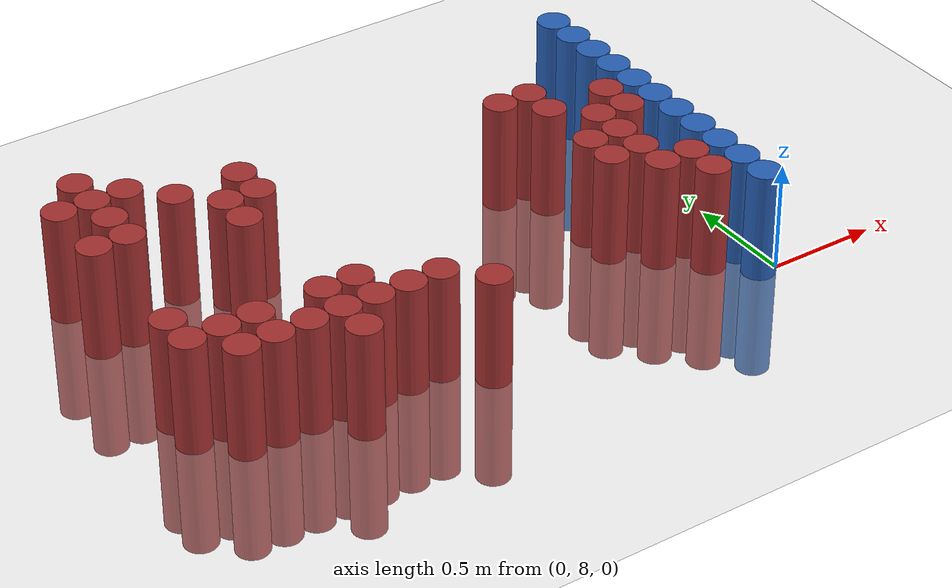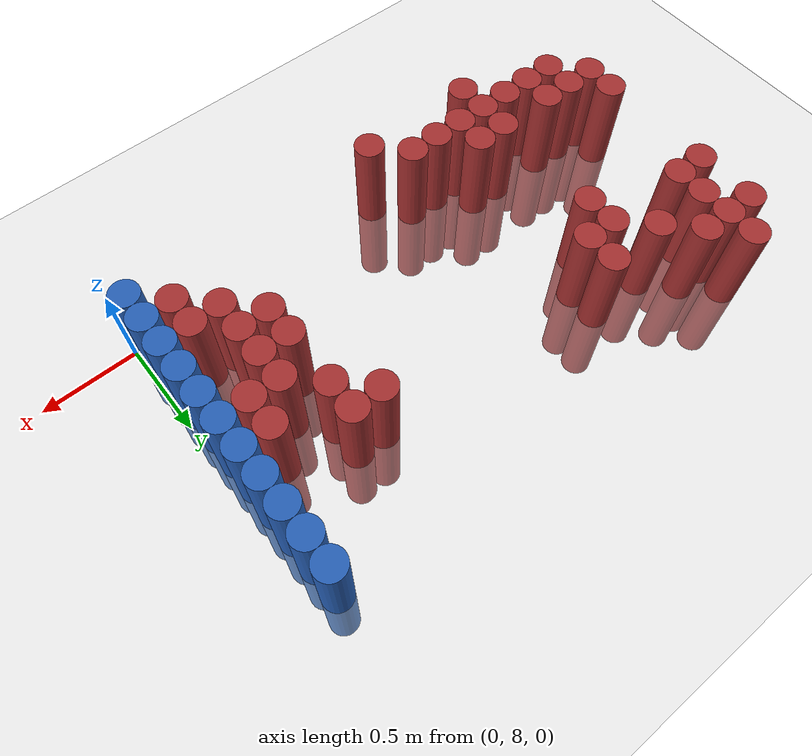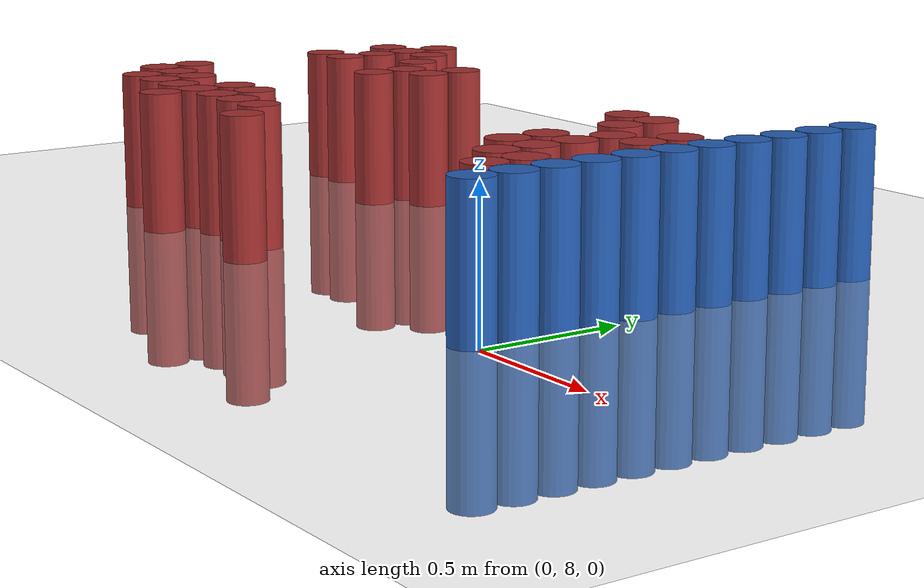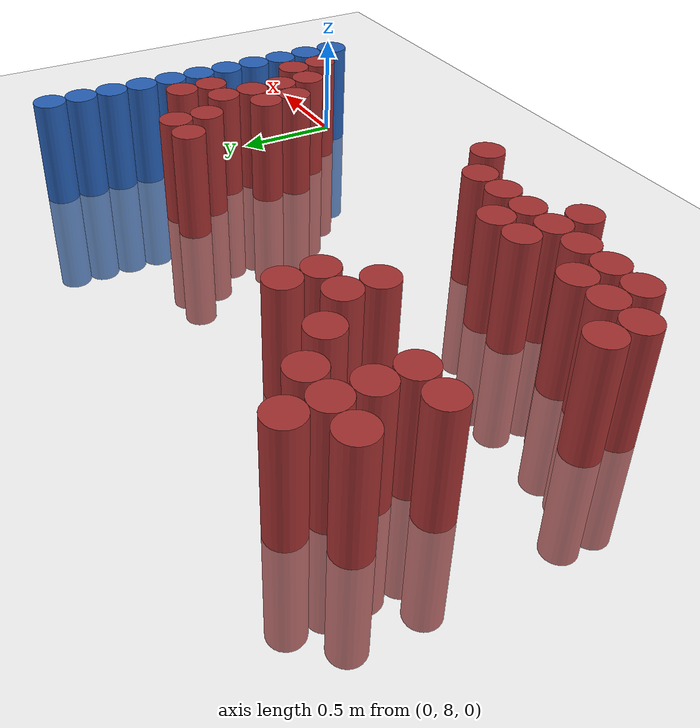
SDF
<sdf version="1.6">
 <world name="default">
  <model name="ground_plane">
   <static>1</static>
   <link name="link">
    <collision name="collision">
     <geometry><plane><normal>0 0 1</normal><size>100 100</size></plane></geometry>
     <surface><friction><ode><mu>100</mu><mu2>50</mu2></ode></friction></surface>
    </collision>
    <visual name="visual">
     <cast_shadows>0</cast_shadows>
     <geometry><plane><normal>0 0 1</normal><size>100 100</size></plane></geometry>
     <material>
      <script><uri>file://media/materials/scripts/gazebo.material</uri><name>Gazebo/Grey</name></script>
     </material>
    </visual>
   </link>
  </model>
  <model name="unit_cylinder_231">
   <static>1</static>
   <pose>-2.625000 8.325000 0.000000 0.000000 0.000000 0.000000</pose>
   <link name="link">
    <inertial>
     <mass>1</mass>
     <inertia><ixx>0.145833</ixx><ixy>0</ixy><ixz>0</ixz><iyy>0.145833</iyy><iyz>0</iyz><izz>0.125</izz></inertia>
    </inertial>
    <collision name="collision">
     <geometry><cylinder><radius>0.075000</radius><length>1</length></cylinder></geometry>
    </collision>
    <visual name="visual">
     <geometry><cylinder><radius>0.075000</radius><length>1</length></cylinder></geometry>
     <material>
      <ambient>0.648000 0.192000 0.192000 1</ambient>
      <diffuse>0.648000 0.192000 0.192000 1</diffuse>
     </material>
     <material>
      <script><name>Gazebo/Grey</name><uri>file://media/materials/scripts/gazebo.material</uri></script>
     </material>
    </visual>
   </link>
  </model>
  <model name="unit_cylinder_232">
   <static>1</static>
   <pose>-2.625000 8.475000 0.000000 0.000000 0.000000 0.000000</pose>
   <link name="link">
    <inertial>
     <mass>1</mass>
     <inertia><ixx>0.145833</ixx><ixy>0</ixy><ixz>0</ixz><iyy>0.145833</iyy><iyz>0</iyz><izz>0.125</izz></inertia>
    </inertial>
    <collision name="collision">
     <geometry><cylinder><radius>0.075000</radius><length>1</length></cylinder></geometry>
    </collision>
    <visual name="visual">
     <geometry><cylinder><radius>0.075000</radius><length>1</length></cylinder></geometry>
     <material>
      <ambient>0.648000 0.192000 0.192000 1</ambient>
      <diffuse>0.648000 0.192000 0.192000 1</diffuse>
     </material>
     <material>
      <script><name>Gazebo/Grey</name><uri>file://media/materials/scripts/gazebo.material</uri></script>
     </material>
    </visual>
   </link>
  </model>
  <model name="unit_cylinder_233">
   <static>1</static>
   <pose>-2.625000 9.075000 0.000000 0.000000 0.000000 0.000000</pose>
   <link name="link">
    <inertial>
     <mass>1</mass>
     <inertia><ixx>0.145833</ixx><ixy>0</ixy><ixz>0</ixz><iyy>0.145833</iyy><iyz>0</iyz><izz>0.125</izz></inertia>
    </inertial>
    <collision name="collision">
     <geometry><cylinder><radius>0.075000</radius><length>1</length></cylinder></geometry>
    </collision>
    <visual name="visual">
     <geometry><cylinder><radius>0.075000</radius><length>1</length></cylinder></geometry>
     <material>
      <ambient>0.648000 0.192000 0.192000 1</ambient>
      <diffuse>0.648000 0.192000 0.192000 1</diffuse>
     </material>
     <material>
      <script><name>Gazebo/Grey</name><uri>file://media/materials/scripts/gazebo.material</uri></script>
     </material>
    </visual>
   </link>
  </model>
  <model name="unit_cylinder_234">
   <static>1</static>
   <pose>-2.625000 9.375000 0.000000 0.000000 0.000000 0.000000</pose>
   <link name="link">
    <inertial>
     <mass>1</mass>
     <inertia><ixx>0.145833</ixx><ixy>0</ixy><ixz>0</ixz><iyy>0.145833</iyy><iyz>0</iyz><izz>0.125</izz></inertia>
    </inertial>
    <collision name="collision">
     <geometry><cylinder><radius>0.075000</radius><length>1</length></cylinder></geometry>
    </collision>
    <visual name="visual">
     <geometry><cylinder><radius>0.075000</radius><length>1</length></cylinder></geometry>
     <material>
      <ambient>0.648000 0.192000 0.192000 1</ambient>
      <diffuse>0.648000 0.192000 0.192000 1</diffuse>
     </material>
     <material>
      <script><name>Gazebo/Grey</name><uri>file://media/materials/scripts/gazebo.material</uri></script>
     </material>
    </visual>
   </link>
  </model>
  <model name="unit_cylinder_241">
   <static>1</static>
   <pose>-2.475000 8.175000 0.000000 0.000000 0.000000 0.000000</pose>
   <link name="link">
    <inertial>
     <mass>1</mass>
     <inertia><ixx>0.145833</ixx><ixy>0</ixy><ixz>0</ixz><iyy>0.145833</iyy><iyz>0</iyz><izz>0.125</izz></inertia>
    </inertial>
    <collision name="collision">
     <geometry><cylinder><radius>0.075000</radius><length>1</length></cylinder></geometry>
    </collision>
    <visual name="visual">
     <geometry><cylinder><radius>0.075000</radius><length>1</length></cylinder></geometry>
     <material>
      <ambient>0.648000 0.192000 0.192000 1</ambient>
      <diffuse>0.648000 0.192000 0.192000 1</diffuse>
     </material>
     <material>
      <script><name>Gazebo/Grey</name><uri>file://media/materials/scripts/gazebo.material</uri></script>
     </material>
    </visual>
   </link>
  </model>
  <model name="unit_cylinder_242">
   <static>1</static>
   <pose>-2.475000 8.325000 0.000000 0.000000 0.000000 0.000000</pose>
   <link name="link">
    <inertial>
     <mass>1</mass>
     <inertia><ixx>0.145833</ixx><ixy>0</ixy><ixz>0</ixz><iyy>0.145833</iyy><iyz>0</iyz><izz>0.125</izz></inertia>
    </inertial>
    <collision name="collision">
     <geometry><cylinder><radius>0.075000</radius><length>1</length></cylinder></geometry>
    </collision>
    <visual name="visual">
     <geometry><cylinder><radius>0.075000</radius><length>1</length></cylinder></geometry>
     <material>
      <ambient>0.648000 0.192000 0.192000 1</ambient>
      <diffuse>0.648000 0.192000 0.192000 1</diffuse>
     </material>
     <material>
      <script><name>Gazebo/Grey</name><uri>file://media/materials/scripts/gazebo.material</uri></script>
     </material>
    </visual>
   </link>
  </model>
  <model name="unit_cylinder_243">
   <static>1</static>
   <pose>-2.475000 9.075000 0.000000 0.000000 0.000000 0.000000</pose>
   <link name="link">
    <inertial>
     <mass>1</mass>
     <inertia><ixx>0.145833</ixx><ixy>0</ixy><ixz>0</ixz><iyy>0.145833</iyy><iyz>0</iyz><izz>0.125</izz></inertia>
    </inertial>
    <collision name="collision">
     <geometry><cylinder><radius>0.075000</radius><length>1</length></cylinder></geometry>
    </collision>
    <visual name="visual">
     <geometry><cylinder><radius>0.075000</radius><length>1</length></cylinder></geometry>
     <material>
      <ambient>0.648000 0.192000 0.192000 1</ambient>
      <diffuse>0.648000 0.192000 0.192000 1</diffuse>
     </material>
     <material>
      <script><name>Gazebo/Grey</name><uri>file://media/materials/scripts/gazebo.material</uri></script>
     </material>
    </visual>
   </link>
  </model>
  <model name="unit_cylinder_244">
   <static>1</static>
   <pose>-2.475000 9.225000 0.000000 0.000000 0.000000 0.000000</pose>
   <link name="link">
    <inertial>
     <mass>1</mass>
     <inertia><ixx>0.145833</ixx><ixy>0</ixy><ixz>0</ixz><iyy>0.145833</iyy><iyz>0</iyz><izz>0.125</izz></inertia>
    </inertial>
    <collision name="collision">
     <geometry><cylinder><radius>0.075000</radius><length>1</length></cylinder></geometry>
    </collision>
    <visual name="visual">
     <geometry><cylinder><radius>0.075000</radius><length>1</length></cylinder></geometry>
     <material>
      <ambient>0.648000 0.192000 0.192000 1</ambient>
      <diffuse>0.648000 0.192000 0.192000 1</diffuse>
     </material>
     <material>
      <script><name>Gazebo/Grey</name><uri>file://media/materials/scripts/gazebo.material</uri></script>
     </material>
    </visual>
   </link>
  </model>
  <model name="unit_cylinder_245">
   <static>1</static>
   <pose>-2.475000 9.375000 0.000000 0.000000 0.000000 0.000000</pose>
   <link name="link">
    <inertial>
     <mass>1</mass>
     <inertia><ixx>0.145833</ixx><ixy>0</ixy><ixz>0</ixz><iyy>0.145833</iyy><iyz>0</iyz><izz>0.125</izz></inertia>
    </inertial>
    <collision name="collision">
     <geometry><cylinder><radius>0.075000</radius><length>1</length></cylinder></geometry>
    </collision>
    <visual name="visual">
     <geometry><cylinder><radius>0.075000</radius><length>1</length></cylinder></geometry>
     <material>
      <ambient>0.648000 0.192000 0.192000 1</ambient>
      <diffuse>0.648000 0.192000 0.192000 1</diffuse>
     </material>
     <material>
      <script><name>Gazebo/Grey</name><uri>file://media/materials/scripts/gazebo.material</uri></script>
     </material>
    </visual>
   </link>
  </model>
  <model name="unit_cylinder_246">
   <static>1</static>
   <pose>-2.475000 9.525000 0.000000 0.000000 0.000000 0.000000</pose>
   <link name="link">
    <inertial>
     <mass>1</mass>
     <inertia><ixx>0.145833</ixx><ixy>0</ixy><ixz>0</ixz><iyy>0.145833</iyy><iyz>0</iyz><izz>0.125</izz></inertia>
    </inertial>
    <collision name="collision">
     <geometry><cylinder><radius>0.075000</radius><length>1</length></cylinder></geometry>
    </collision>
    <visual name="visual">
     <geometry><cylinder><radius>0.075000</radius><length>1</length></cylinder></geometry>
     <material>
      <ambient>0.648000 0.192000 0.192000 1</ambient>
      <diffuse>0.648000 0.192000 0.192000 1</diffuse>
     </material>
     <material>
      <script><name>Gazebo/Grey</name><uri>file://media/materials/scripts/gazebo.material</uri></script>
     </material>
    </visual>
   </link>
  </model>
  <model name="unit_cylinder_253">
   <static>1</static>
   <pose>-2.325000 8.175000 0.000000 0.000000 0.000000 0.000000</pose>
   <link name="link">
    <inertial>
     <mass>1</mass>
     <inertia><ixx>0.145833</ixx><ixy>0</ixy><ixz>0</ixz><iyy>0.145833</iyy><iyz>0</iyz><izz>0.125</izz></inertia>
    </inertial>
    <collision name="collision">
     <geometry><cylinder><radius>0.075000</radius><length>1</length></cylinder></geometry>
    </collision>
    <visual name="visual">
     <geometry><cylinder><radius>0.075000</radius><length>1</length></cylinder></geometry>
     <material>
      <ambient>0.648000 0.192000 0.192000 1</ambient>
      <diffuse>0.648000 0.192000 0.192000 1</diffuse>
     </material>
     <material>
      <script><name>Gazebo/Grey</name><uri>file://media/materials/scripts/gazebo.material</uri></script>
     </material>
    </visual>
   </link>
  </model>
  <model name="unit_cylinder_254">
   <static>1</static>
   <pose>-2.325000 8.325000 0.000000 0.000000 0.000000 0.000000</pose>
   <link name="link">
    <inertial>
     <mass>1</mass>
     <inertia><ixx>0.145833</ixx><ixy>0</ixy><ixz>0</ixz><iyy>0.145833</iyy><iyz>0</iyz><izz>0.125</izz></inertia>
    </inertial>
    <collision name="collision">
     <geometry><cylinder><radius>0.075000</radius><length>1</length></cylinder></geometry>
    </collision>
    <visual name="visual">
     <geometry><cylinder><radius>0.075000</radius><length>1</length></cylinder></geometry>
     <material>
      <ambient>0.648000 0.192000 0.192000 1</ambient>
      <diffuse>0.648000 0.192000 0.192000 1</diffuse>
     </material>
     <material>
      <script><name>Gazebo/Grey</name><uri>file://media/materials/scripts/gazebo.material</uri></script>
     </material>
    </visual>
   </link>
  </model>
  <model name="unit_cylinder_255">
   <static>1</static>
   <pose>-2.325000 9.375000 0.000000 0.000000 0.000000 0.000000</pose>
   <link name="link">
    <inertial>
     <mass>1</mass>
     <inertia><ixx>0.145833</ixx><ixy>0</ixy><ixz>0</ixz><iyy>0.145833</iyy><iyz>0</iyz><izz>0.125</izz></inertia>
    </inertial>
    <collision name="collision">
     <geometry><cylinder><radius>0.075000</radius><length>1</length></cylinder></geometry>
    </collision>
    <visual name="visual">
     <geometry><cylinder><radius>0.075000</radius><length>1</length></cylinder></geometry>
     <material>
      <ambient>0.648000 0.192000 0.192000 1</ambient>
      <diffuse>0.648000 0.192000 0.192000 1</diffuse>
     </material>
     <material>
      <script><name>Gazebo/Grey</name><uri>file://media/materials/scripts/gazebo.material</uri></script>
     </material>
    </visual>
   </link>
  </model>
  <model name="unit_cylinder_263">
   <static>1</static>
   <pose>-2.175000 8.175000 0.000000 0.000000 0.000000 0.000000</pose>
   <link name="link">
    <inertial>
     <mass>1</mass>
     <inertia><ixx>0.145833</ixx><ixy>0</ixy><ixz>0</ixz><iyy>0.145833</iyy><iyz>0</iyz><izz>0.125</izz></inertia>
    </inertial>
    <collision name="collision">
     <geometry><cylinder><radius>0.075000</radius><length>1</length></cylinder></geometry>
    </collision>
    <visual name="visual">
     <geometry><cylinder><radius>0.075000</radius><length>1</length></cylinder></geometry>
     <material>
      <ambient>0.648000 0.192000 0.192000 1</ambient>
      <diffuse>0.648000 0.192000 0.192000 1</diffuse>
     </material>
     <material>
      <script><name>Gazebo/Grey</name><uri>file://media/materials/scripts/gazebo.material</uri></script>
     </material>
    </visual>
   </link>
  </model>
  <model name="unit_cylinder_264">
   <static>1</static>
   <pose>-2.175000 9.225000 0.000000 0.000000 0.000000 0.000000</pose>
   <link name="link">
    <inertial>
     <mass>1</mass>
     <inertia><ixx>0.145833</ixx><ixy>0</ixy><ixz>0</ixz><iyy>0.145833</iyy><iyz>0</iyz><izz>0.125</izz></inertia>
    </inertial>
    <collision name="collision">
     <geometry><cylinder><radius>0.075000</radius><length>1</length></cylinder></geometry>
    </collision>
    <visual name="visual">
     <geometry><cylinder><radius>0.075000</radius><length>1</length></cylinder></geometry>
     <material>
      <ambient>0.648000 0.192000 0.192000 1</ambient>
      <diffuse>0.648000 0.192000 0.192000 1</diffuse>
     </material>
     <material>
      <script><name>Gazebo/Grey</name><uri>file://media/materials/scripts/gazebo.material</uri></script>
     </material>
    </visual>
   </link>
  </model>
  <model name="unit_cylinder_269">
   <static>1</static>
   <pose>-2.025000 8.025000 0.000000 0.000000 0.000000 0.000000</pose>
   <link name="link">
    <inertial>
     <mass>1</mass>
     <inertia><ixx>0.145833</ixx><ixy>0</ixy><ixz>0</ixz><iyy>0.145833</iyy><iyz>0</iyz><izz>0.125</izz></inertia>
    </inertial>
    <collision name="collision">
     <geometry><cylinder><radius>0.075000</radius><length>1</length></cylinder></geometry>
    </collision>
    <visual name="visual">
     <geometry><cylinder><radius>0.075000</radius><length>1</length></cylinder></geometry>
     <material>
      <ambient>0.648000 0.192000 0.192000 1</ambient>
      <diffuse>0.648000 0.192000 0.192000 1</diffuse>
     </material>
     <material>
      <script><name>Gazebo/Grey</name><uri>file://media/materials/scripts/gazebo.material</uri></script>
     </material>
    </visual>
   </link>
  </model>
  <model name="unit_cylinder_270">
   <static>1</static>
   <pose>-2.025000 8.175000 0.000000 0.000000 0.000000 0.000000</pose>
   <link name="link">
    <inertial>
     <mass>1</mass>
     <inertia><ixx>0.145833</ixx><ixy>0</ixy><ixz>0</ixz><iyy>0.145833</iyy><iyz>0</iyz><izz>0.125</izz></inertia>
    </inertial>
    <collision name="collision">
     <geometry><cylinder><radius>0.075000</radius><length>1</length></cylinder></geometry>
    </collision>
    <visual name="visual">
     <geometry><cylinder><radius>0.075000</radius><length>1</length></cylinder></geometry>
     <material>
      <ambient>0.648000 0.192000 0.192000 1</ambient>
      <diffuse>0.648000 0.192000 0.192000 1</diffuse>
     </material>
     <material>
      <script><name>Gazebo/Grey</name><uri>file://media/materials/scripts/gazebo.material</uri></script>
     </material>
    </visual>
   </link>
  </model>
  <model name="unit_cylinder_271">
   <static>1</static>
   <pose>-2.025000 8.325000 0.000000 0.000000 0.000000 0.000000</pose>
   <link name="link">
    <inertial>
     <mass>1</mass>
     <inertia><ixx>0.145833</ixx><ixy>0</ixy><ixz>0</ixz><iyy>0.145833</iyy><iyz>0</iyz><izz>0.125</izz></inertia>
    </inertial>
    <collision name="collision">
     <geometry><cylinder><radius>0.075000</radius><length>1</length></cylinder></geometry>
    </collision>
    <visual name="visual">
     <geometry><cylinder><radius>0.075000</radius><length>1</length></cylinder></geometry>
     <material>
      <ambient>0.648000 0.192000 0.192000 1</ambient>
      <diffuse>0.648000 0.192000 0.192000 1</diffuse>
     </material>
     <material>
      <script><name>Gazebo/Grey</name><uri>file://media/materials/scripts/gazebo.material</uri></script>
     </material>
    </visual>
   </link>
  </model>
  <model name="unit_cylinder_272">
   <static>1</static>
   <pose>-2.025000 8.925000 0.000000 0.000000 0.000000 0.000000</pose>
   <link name="link">
    <inertial>
     <mass>1</mass>
     <inertia><ixx>0.145833</ixx><ixy>0</ixy><ixz>0</ixz><iyy>0.145833</iyy><iyz>0</iyz><izz>0.125</izz></inertia>
    </inertial>
    <collision name="collision">
     <geometry><cylinder><radius>0.075000</radius><length>1</length></cylinder></geometry>
    </collision>
    <visual name="visual">
     <geometry><cylinder><radius>0.075000</radius><length>1</length></cylinder></geometry>
     <material>
      <ambient>0.648000 0.192000 0.192000 1</ambient>
      <diffuse>0.648000 0.192000 0.192000 1</diffuse>
     </material>
     <material>
      <script><name>Gazebo/Grey</name><uri>file://media/materials/scripts/gazebo.material</uri></script>
     </material>
    </visual>
   </link>
  </model>
  <model name="unit_cylinder_273">
   <static>1</static>
   <pose>-2.025000 9.075000 0.000000 0.000000 0.000000 0.000000</pose>
   <link name="link">
    <inertial>
     <mass>1</mass>
     <inertia><ixx>0.145833</ixx><ixy>0</ixy><ixz>0</ixz><iyy>0.145833</iyy><iyz>0</iyz><izz>0.125</izz></inertia>
    </inertial>
    <collision name="collision">
     <geometry><cylinder><radius>0.075000</radius><length>1</length></cylinder></geometry>
    </collision>
    <visual name="visual">
     <geometry><cylinder><radius>0.075000</radius><length>1</length></cylinder></geometry>
     <material>
      <ambient>0.648000 0.192000 0.192000 1</ambient>
      <diffuse>0.648000 0.192000 0.192000 1</diffuse>
     </material>
     <material>
      <script><name>Gazebo/Grey</name><uri>file://media/materials/scripts/gazebo.material</uri></script>
     </material>
    </visual>
   </link>
  </model>
  <model name="unit_cylinder_280">
   <static>1</static>
   <pose>-1.875000 8.175000 0.000000 0.000000 0.000000 0.000000</pose>
   <link name="link">
    <inertial>
     <mass>1</mass>
     <inertia><ixx>0.145833</ixx><ixy>0</ixy><ixz>0</ixz><iyy>0.145833</iyy><iyz>0</iyz><izz>0.125</izz></inertia>
    </inertial>
    <collision name="collision">
     <geometry><cylinder><radius>0.075000</radius><length>1</length></cylinder></geometry>
    </collision>
    <visual name="visual">
     <geometry><cylinder><radius>0.075000</radius><length>1</length></cylinder></geometry>
     <material>
      <ambient>0.648000 0.192000 0.192000 1</ambient>
      <diffuse>0.648000 0.192000 0.192000 1</diffuse>
     </material>
     <material>
      <script><name>Gazebo/Grey</name><uri>file://media/materials/scripts/gazebo.material</uri></script>
     </material>
    </visual>
   </link>
  </model>
  <model name="unit_cylinder_281">
   <static>1</static>
   <pose>-1.875000 8.325000 0.000000 0.000000 0.000000 0.000000</pose>
   <link name="link">
    <inertial>
     <mass>1</mass>
     <inertia><ixx>0.145833</ixx><ixy>0</ixy><ixz>0</ixz><iyy>0.145833</iyy><iyz>0</iyz><izz>0.125</izz></inertia>
    </inertial>
    <collision name="collision">
     <geometry><cylinder><radius>0.075000</radius><length>1</length></cylinder></geometry>
    </collision>
    <visual name="visual">
     <geometry><cylinder><radius>0.075000</radius><length>1</length></cylinder></geometry>
     <material>
      <ambient>0.648000 0.192000 0.192000 1</ambient>
      <diffuse>0.648000 0.192000 0.192000 1</diffuse>
     </material>
     <material>
      <script><name>Gazebo/Grey</name><uri>file://media/materials/scripts/gazebo.material</uri></script>
     </material>
    </visual>
   </link>
  </model>
  <model name="unit_cylinder_282">
   <static>1</static>
   <pose>-1.875000 9.075000 0.000000 0.000000 0.000000 0.000000</pose>
   <link name="link">
    <inertial>
     <mass>1</mass>
     <inertia><ixx>0.145833</ixx><ixy>0</ixy><ixz>0</ixz><iyy>0.145833</iyy><iyz>0</iyz><izz>0.125</izz></inertia>
    </inertial>
    <collision name="collision">
     <geometry><cylinder><radius>0.075000</radius><length>1</length></cylinder></geometry>
    </collision>
    <visual name="visual">
     <geometry><cylinder><radius>0.075000</radius><length>1</length></cylinder></geometry>
     <material>
      <ambient>0.648000 0.192000 0.192000 1</ambient>
      <diffuse>0.648000 0.192000 0.192000 1</diffuse>
     </material>
     <material>
      <script><name>Gazebo/Grey</name><uri>file://media/materials/scripts/gazebo.material</uri></script>
     </material>
    </visual>
   </link>
  </model>
  <model name="unit_cylinder_283">
   <static>1</static>
   <pose>-1.875000 9.225000 0.000000 0.000000 0.000000 0.000000</pose>
   <link name="link">
    <inertial>
     <mass>1</mass>
     <inertia><ixx>0.145833</ixx><ixy>0</ixy><ixz>0</ixz><iyy>0.145833</iyy><iyz>0</iyz><izz>0.125</izz></inertia>
    </inertial>
    <collision name="collision">
     <geometry><cylinder><radius>0.075000</radius><length>1</length></cylinder></geometry>
    </collision>
    <visual name="visual">
     <geometry><cylinder><radius>0.075000</radius><length>1</length></cylinder></geometry>
     <material>
      <ambient>0.648000 0.192000 0.192000 1</ambient>
      <diffuse>0.648000 0.192000 0.192000 1</diffuse>
     </material>
     <material>
      <script><name>Gazebo/Grey</name><uri>file://media/materials/scripts/gazebo.material</uri></script>
     </material>
    </visual>
   </link>
  </model>
  <model name="unit_cylinder_290">
   <static>1</static>
   <pose>-1.725000 8.175000 0.000000 0.000000 0.000000 0.000000</pose>
   <link name="link">
    <inertial>
     <mass>1</mass>
     <inertia><ixx>0.145833</ixx><ixy>0</ixy><ixz>0</ixz><iyy>0.145833</iyy><iyz>0</iyz><izz>0.125</izz></inertia>
    </inertial>
    <collision name="collision">
     <geometry><cylinder><radius>0.075000</radius><length>1</length></cylinder></geometry>
    </collision>
    <visual name="visual">
     <geometry><cylinder><radius>0.075000</radius><length>1</length></cylinder></geometry>
     <material>
      <ambient>0.648000 0.192000 0.192000 1</ambient>
      <diffuse>0.648000 0.192000 0.192000 1</diffuse>
     </material>
     <material>
      <script><name>Gazebo/Grey</name><uri>file://media/materials/scripts/gazebo.material</uri></script>
     </material>
    </visual>
   </link>
  </model>
  <model name="unit_cylinder_298">
   <static>1</static>
   <pose>-1.575000 8.175000 0.000000 0.000000 0.000000 0.000000</pose>
   <link name="link">
    <inertial>
     <mass>1</mass>
     <inertia><ixx>0.145833</ixx><ixy>0</ixy><ixz>0</ixz><iyy>0.145833</iyy><iyz>0</iyz><izz>0.125</izz></inertia>
    </inertial>
    <collision name="collision">
     <geometry><cylinder><radius>0.075000</radius><length>1</length></cylinder></geometry>
    </collision>
    <visual name="visual">
     <geometry><cylinder><radius>0.075000</radius><length>1</length></cylinder></geometry>
     <material>
      <ambient>0.648000 0.192000 0.192000 1</ambient>
      <diffuse>0.648000 0.192000 0.192000 1</diffuse>
     </material>
     <material>
      <script><name>Gazebo/Grey</name><uri>file://media/materials/scripts/gazebo.material</uri></script>
     </material>
    </visual>
   </link>
  </model>
  <model name="unit_cylinder_303">
   <static>1</static>
   <pose>-1.425000 8.025000 0.000000 0.000000 0.000000 0.000000</pose>
   <link name="link">
    <inertial>
     <mass>1</mass>
     <inertia><ixx>0.145833</ixx><ixy>0</ixy><ixz>0</ixz><iyy>0.145833</iyy><iyz>0</iyz><izz>0.125</izz></inertia>
    </inertial>
    <collision name="collision">
     <geometry><cylinder><radius>0.075000</radius><length>1</length></cylinder></geometry>
    </collision>
    <visual name="visual">
     <geometry><cylinder><radius>0.075000</radius><length>1</length></cylinder></geometry>
     <material>
      <ambient>0.648000 0.192000 0.192000 1</ambient>
      <diffuse>0.648000 0.192000 0.192000 1</diffuse>
     </material>
     <material>
      <script><name>Gazebo/Grey</name><uri>file://media/materials/scripts/gazebo.material</uri></script>
     </material>
    </visual>
   </link>
  </model>
  <model name="unit_cylinder_308">
   <static>1</static>
   <pose>-0.675000 9.075000 0.000000 0.000000 0.000000 0.000000</pose>
   <link name="link">
    <inertial>
     <mass>1</mass>
     <inertia><ixx>0.145833</ixx><ixy>0</ixy><ixz>0</ixz><iyy>0.145833</iyy><iyz>0</iyz><izz>0.125</izz></inertia>
    </inertial>
    <collision name="collision">
     <geometry><cylinder><radius>0.075000</radius><length>1</length></cylinder></geometry>
    </collision>
    <visual name="visual">
     <geometry><cylinder><radius>0.075000</radius><length>1</length></cylinder></geometry>
     <material>
      <ambient>0.648000 0.192000 0.192000 1</ambient>
      <diffuse>0.648000 0.192000 0.192000 1</diffuse>
     </material>
     <material>
      <script><name>Gazebo/Grey</name><uri>file://media/materials/scripts/gazebo.material</uri></script>
     </material>
    </visual>
   </link>
  </model>
  <model name="unit_cylinder_309">
   <static>1</static>
   <pose>-0.525000 8.475000 0.000000 0.000000 0.000000 0.000000</pose>
   <link name="link">
    <inertial>
     <mass>1</mass>
     <inertia><ixx>0.145833</ixx><ixy>0</ixy><ixz>0</ixz><iyy>0.145833</iyy><iyz>0</iyz><izz>0.125</izz></inertia>
    </inertial>
    <collision name="collision">
     <geometry><cylinder><radius>0.075000</radius><length>1</length></cylinder></geometry>
    </collision>
    <visual name="visual">
     <geometry><cylinder><radius>0.075000</radius><length>1</length></cylinder></geometry>
     <material>
      <ambient>0.648000 0.192000 0.192000 1</ambient>
      <diffuse>0.648000 0.192000 0.192000 1</diffuse>
     </material>
     <material>
      <script><name>Gazebo/Grey</name><uri>file://media/materials/scripts/gazebo.material</uri></script>
     </material>
    </visual>
   </link>
  </model>
  <model name="unit_cylinder_310">
   <static>1</static>
   <pose>-0.525000 8.625000 0.000000 0.000000 0.000000 0.000000</pose>
   <link name="link">
    <inertial>
     <mass>1</mass>
     <inertia><ixx>0.145833</ixx><ixy>0</ixy><ixz>0</ixz><iyy>0.145833</iyy><iyz>0</iyz><izz>0.125</izz></inertia>
    </inertial>
    <collision name="collision">
     <geometry><cylinder><radius>0.075000</radius><length>1</length></cylinder></geometry>
    </collision>
    <visual name="visual">
     <geometry><cylinder><radius>0.075000</radius><length>1</length></cylinder></geometry>
     <material>
      <ambient>0.648000 0.192000 0.192000 1</ambient>
      <diffuse>0.648000 0.192000 0.192000 1</diffuse>
     </material>
     <material>
      <script><name>Gazebo/Grey</name><uri>file://media/materials/scripts/gazebo.material</uri></script>
     </material>
    </visual>
   </link>
  </model>
  <model name="unit_cylinder_311">
   <static>1</static>
   <pose>-0.525000 8.925000 0.000000 0.000000 0.000000 0.000000</pose>
   <link name="link">
    <inertial>
     <mass>1</mass>
     <inertia><ixx>0.145833</ixx><ixy>0</ixy><ixz>0</ixz><iyy>0.145833</iyy><iyz>0</iyz><izz>0.125</izz></inertia>
    </inertial>
    <collision name="collision">
     <geometry><cylinder><radius>0.075000</radius><length>1</length></cylinder></geometry>
    </collision>
    <visual name="visual">
     <geometry><cylinder><radius>0.075000</radius><length>1</length></cylinder></geometry>
     <material>
      <ambient>0.648000 0.192000 0.192000 1</ambient>
      <diffuse>0.648000 0.192000 0.192000 1</diffuse>
     </material>
     <material>
      <script><name>Gazebo/Grey</name><uri>file://media/materials/scripts/gazebo.material</uri></script>
     </material>
    </visual>
   </link>
  </model>
  <model name="unit_cylinder_312">
   <static>1</static>
   <pose>-0.525000 9.075000 0.000000 0.000000 0.000000 0.000000</pose>
   <link name="link">
    <inertial>
     <mass>1</mass>
     <inertia><ixx>0.145833</ixx><ixy>0</ixy><ixz>0</ixz><iyy>0.145833</iyy><iyz>0</iyz><izz>0.125</izz></inertia>
    </inertial>
    <collision name="collision">
     <geometry><cylinder><radius>0.075000</radius><length>1</length></cylinder></geometry>
    </collision>
    <visual name="visual">
     <geometry><cylinder><radius>0.075000</radius><length>1</length></cylinder></geometry>
     <material>
      <ambient>0.648000 0.192000 0.192000 1</ambient>
      <diffuse>0.648000 0.192000 0.192000 1</diffuse>
     </material>
     <material>
      <script><name>Gazebo/Grey</name><uri>file://media/materials/scripts/gazebo.material</uri></script>
     </material>
    </visual>
   </link>
  </model>
  <model name="unit_cylinder_313">
   <static>1</static>
   <pose>-0.375000 8.325000 0.000000 0.000000 0.000000 0.000000</pose>
   <link name="link">
    <inertial>
     <mass>1</mass>
     <inertia><ixx>0.145833</ixx><ixy>0</ixy><ixz>0</ixz><iyy>0.145833</iyy><iyz>0</iyz><izz>0.125</izz></inertia>
    </inertial>
    <collision name="collision">
     <geometry><cylinder><radius>0.075000</radius><length>1</length></cylinder></geometry>
    </collision>
    <visual name="visual">
     <geometry><cylinder><radius>0.075000</radius><length>1</length></cylinder></geometry>
     <material>
      <ambient>0.648000 0.192000 0.192000 1</ambient>
      <diffuse>0.648000 0.192000 0.192000 1</diffuse>
     </material>
     <material>
      <script><name>Gazebo/Grey</name><uri>file://media/materials/scripts/gazebo.material</uri></script>
     </material>
    </visual>
   </link>
  </model>
  <model name="unit_cylinder_314">
   <static>1</static>
   <pose>-0.375000 8.475000 0.000000 0.000000 0.000000 0.000000</pose>
   <link name="link">
    <inertial>
     <mass>1</mass>
     <inertia><ixx>0.145833</ixx><ixy>0</ixy><ixz>0</ixz><iyy>0.145833</iyy><iyz>0</iyz><izz>0.125</izz></inertia>
    </inertial>
    <collision name="collision">
     <geometry><cylinder><radius>0.075000</radius><length>1</length></cylinder></geometry>
    </collision>
    <visual name="visual">
     <geometry><cylinder><radius>0.075000</radius><length>1</length></cylinder></geometry>
     <material>
      <ambient>0.648000 0.192000 0.192000 1</ambient>
      <diffuse>0.648000 0.192000 0.192000 1</diffuse>
     </material>
     <material>
      <script><name>Gazebo/Grey</name><uri>file://media/materials/scripts/gazebo.material</uri></script>
     </material>
    </visual>
   </link>
  </model>
  <model name="unit_cylinder_315">
   <static>1</static>
   <pose>-0.375000 8.625000 0.000000 0.000000 0.000000 0.000000</pose>
   <link name="link">
    <inertial>
     <mass>1</mass>
     <inertia><ixx>0.145833</ixx><ixy>0</ixy><ixz>0</ixz><iyy>0.145833</iyy><iyz>0</iyz><izz>0.125</izz></inertia>
    </inertial>
    <collision name="collision">
     <geometry><cylinder><radius>0.075000</radius><length>1</length></cylinder></geometry>
    </collision>
    <visual name="visual">
     <geometry><cylinder><radius>0.075000</radius><length>1</length></cylinder></geometry>
     <material>
      <ambient>0.648000 0.192000 0.192000 1</ambient>
      <diffuse>0.648000 0.192000 0.192000 1</diffuse>
     </material>
     <material>
      <script><name>Gazebo/Grey</name><uri>file://media/materials/scripts/gazebo.material</uri></script>
     </material>
    </visual>
   </link>
  </model>
  <model name="unit_cylinder_316">
   <static>1</static>
   <pose>-0.375000 8.775000 0.000000 0.000000 0.000000 0.000000</pose>
   <link name="link">
    <inertial>
     <mass>1</mass>
     <inertia><ixx>0.145833</ixx><ixy>0</ixy><ixz>0</ixz><iyy>0.145833</iyy><iyz>0</iyz><izz>0.125</izz></inertia>
    </inertial>
    <collision name="collision">
     <geometry><cylinder><radius>0.075000</radius><length>1</length></cylinder></geometry>
    </collision>
    <visual name="visual">
     <geometry><cylinder><radius>0.075000</radius><length>1</length></cylinder></geometry>
     <material>
      <ambient>0.648000 0.192000 0.192000 1</ambient>
      <diffuse>0.648000 0.192000 0.192000 1</diffuse>
     </material>
     <material>
      <script><name>Gazebo/Grey</name><uri>file://media/materials/scripts/gazebo.material</uri></script>
     </material>
    </visual>
   </link>
  </model>
  <model name="unit_cylinder_323">
   <static>1</static>
   <pose>-0.225000 8.175000 0.000000 0.000000 0.000000 0.000000</pose>
   <link name="link">
    <inertial>
     <mass>1</mass>
     <inertia><ixx>0.145833</ixx><ixy>0</ixy><ixz>0</ixz><iyy>0.145833</iyy><iyz>0</iyz><izz>0.125</izz></inertia>
    </inertial>
    <collision name="collision">
     <geometry><cylinder><radius>0.075000</radius><length>1</length></cylinder></geometry>
    </collision>
    <visual name="visual">
     <geometry><cylinder><radius>0.075000</radius><length>1</length></cylinder></geometry>
     <material>
      <ambient>0.648000 0.192000 0.192000 1</ambient>
      <diffuse>0.648000 0.192000 0.192000 1</diffuse>
     </material>
     <material>
      <script><name>Gazebo/Grey</name><uri>file://media/materials/scripts/gazebo.material</uri></script>
     </material>
    </visual>
   </link>
  </model>
  <model name="unit_cylinder_324">
   <static>1</static>
   <pose>-0.225000 8.325000 0.000000 0.000000 0.000000 0.000000</pose>
   <link name="link">
    <inertial>
     <mass>1</mass>
     <inertia><ixx>0.145833</ixx><ixy>0</ixy><ixz>0</ixz><iyy>0.145833</iyy><iyz>0</iyz><izz>0.125</izz></inertia>
    </inertial>
    <collision name="collision">
     <geometry><cylinder><radius>0.075000</radius><length>1</length></cylinder></geometry>
    </collision>
    <visual name="visual">
     <geometry><cylinder><radius>0.075000</radius><length>1</length></cylinder></geometry>
     <material>
      <ambient>0.648000 0.192000 0.192000 1</ambient>
      <diffuse>0.648000 0.192000 0.192000 1</diffuse>
     </material>
     <material>
      <script><name>Gazebo/Grey</name><uri>file://media/materials/scripts/gazebo.material</uri></script>
     </material>
    </visual>
   </link>
  </model>
  <model name="unit_cylinder_325">
   <static>1</static>
   <pose>-0.225000 8.775000 0.000000 0.000000 0.000000 0.000000</pose>
   <link name="link">
    <inertial>
     <mass>1</mass>
     <inertia><ixx>0.145833</ixx><ixy>0</ixy><ixz>0</ixz><iyy>0.145833</iyy><iyz>0</iyz><izz>0.125</izz></inertia>
    </inertial>
    <collision name="collision">
     <geometry><cylinder><radius>0.075000</radius><length>1</length></cylinder></geometry>
    </collision>
    <visual name="visual">
     <geometry><cylinder><radius>0.075000</radius><length>1</length></cylinder></geometry>
     <material>
      <ambient>0.648000 0.192000 0.192000 1</ambient>
      <diffuse>0.648000 0.192000 0.192000 1</diffuse>
     </material>
     <material>
      <script><name>Gazebo/Grey</name><uri>file://media/materials/scripts/gazebo.material</uri></script>
     </material>
    </visual>
   </link>
  </model>
  <model name="unit_cylinder_326">
   <static>1</static>
   <pose>-0.225000 8.925000 0.000000 0.000000 0.000000 0.000000</pose>
   <link name="link">
    <inertial>
     <mass>1</mass>
     <inertia><ixx>0.145833</ixx><ixy>0</ixy><ixz>0</ixz><iyy>0.145833</iyy><iyz>0</iyz><izz>0.125</izz></inertia>
    </inertial>
    <collision name="collision">
     <geometry><cylinder><radius>0.075000</radius><length>1</length></cylinder></geometry>
    </collision>
    <visual name="visual">
     <geometry><cylinder><radius>0.075000</radius><length>1</length></cylinder></geometry>
     <material>
      <ambient>0.648000 0.192000 0.192000 1</ambient>
      <diffuse>0.648000 0.192000 0.192000 1</diffuse>
     </material>
     <material>
      <script><name>Gazebo/Grey</name><uri>file://media/materials/scripts/gazebo.material</uri></script>
     </material>
    </visual>
   </link>
  </model>
  <model name="unit_cylinder_346">
   <static>1</static>
   <pose>-0.075000 8.025000 0.000000 0.000000 0.000000 0.000000</pose>
   <link name="link">
    <inertial>
     <mass>1</mass>
     <inertia><ixx>0.145833</ixx><ixy>0</ixy><ixz>0</ixz><iyy>0.145833</iyy><iyz>0</iyz><izz>0.125</izz></inertia>
    </inertial>
    <collision name="collision">
     <geometry><cylinder><radius>0.075000</radius><length>1</length></cylinder></geometry>
    </collision>
    <visual name="visual">
     <geometry><cylinder><radius>0.075000</radius><length>1</length></cylinder></geometry>
     <material>
      <ambient>0.152000 0.379000 0.720000 1</ambient>
      <diffuse>0.152000 0.379000 0.720000 1</diffuse>
     </material>
     <material>
      <script><name>Gazebo/Grey</name><uri>file://media/materials/scripts/gazebo.material</uri></script>
     </material>
    </visual>
   </link>
  </model>
  <model name="unit_cylinder_347">
   <static>1</static>
   <pose>-0.075000 8.175000 0.000000 0.000000 0.000000 0.000000</pose>
   <link name="link">
    <inertial>
     <mass>1</mass>
     <inertia><ixx>0.145833</ixx><ixy>0</ixy><ixz>0</ixz><iyy>0.145833</iyy><iyz>0</iyz><izz>0.125</izz></inertia>
    </inertial>
    <collision name="collision">
     <geometry><cylinder><radius>0.075000</radius><length>1</length></cylinder></geometry>
    </collision>
    <visual name="visual">
     <geometry><cylinder><radius>0.075000</radius><length>1</length></cylinder></geometry>
     <material>
      <ambient>0.152000 0.379000 0.720000 1</ambient>
      <diffuse>0.152000 0.379000 0.720000 1</diffuse>
     </material>
     <material>
      <script><name>Gazebo/Grey</name><uri>file://media/materials/scripts/gazebo.material</uri></script>
     </material>
    </visual>
   </link>
  </model>
  <model name="unit_cylinder_348">
   <static>1</static>
   <pose>-0.075000 8.325000 0.000000 0.000000 0.000000 0.000000</pose>
   <link name="link">
    <inertial>
     <mass>1</mass>
     <inertia><ixx>0.145833</ixx><ixy>0</ixy><ixz>0</ixz><iyy>0.145833</iyy><iyz>0</iyz><izz>0.125</izz></inertia>
    </inertial>
    <collision name="collision">
     <geometry><cylinder><radius>0.075000</radius><length>1</length></cylinder></geometry>
    </collision>
    <visual name="visual">
     <geometry><cylinder><radius>0.075000</radius><length>1</length></cylinder></geometry>
     <material>
      <ambient>0.152000 0.379000 0.720000 1</ambient>
      <diffuse>0.152000 0.379000 0.720000 1</diffuse>
     </material>
     <material>
      <script><name>Gazebo/Grey</name><uri>file://media/materials/scripts/gazebo.material</uri></script>
     </material>
    </visual>
   </link>
  </model>
  <model name="unit_cylinder_349">
   <static>1</static>
   <pose>-0.075000 8.475000 0.000000 0.000000 0.000000 0.000000</pose>
   <link name="link">
    <inertial>
     <mass>1</mass>
     <inertia><ixx>0.145833</ixx><ixy>0</ixy><ixz>0</ixz><iyy>0.145833</iyy><iyz>0</iyz><izz>0.125</izz></inertia>
    </inertial>
    <collision name="collision">
     <geometry><cylinder><radius>0.075000</radius><length>1</length></cylinder></geometry>
    </collision>
    <visual name="visual">
     <geometry><cylinder><radius>0.075000</radius><length>1</length></cylinder></geometry>
     <material>
      <ambient>0.152000 0.379000 0.720000 1</ambient>
      <diffuse>0.152000 0.379000 0.720000 1</diffuse>
     </material>
     <material>
      <script><name>Gazebo/Grey</name><uri>file://media/materials/scripts/gazebo.material</uri></script>
     </material>
    </visual>
   </link>
  </model>
  <model name="unit_cylinder_350">
   <static>1</static>
   <pose>-0.075000 8.625000 0.000000 0.000000 0.000000 0.000000</pose>
   <link name="link">
    <inertial>
     <mass>1</mass>
     <inertia><ixx>0.145833</ixx><ixy>0</ixy><ixz>0</ixz><iyy>0.145833</iyy><iyz>0</iyz><izz>0.125</izz></inertia>
    </inertial>
    <collision name="collision">
     <geometry><cylinder><radius>0.075000</radius><length>1</length></cylinder></geometry>
    </collision>
    <visual name="visual">
     <geometry><cylinder><radius>0.075000</radius><length>1</length></cylinder></geometry>
     <material>
      <ambient>0.152000 0.379000 0.720000 1</ambient>
      <diffuse>0.152000 0.379000 0.720000 1</diffuse>
     </material>
     <material>
      <script><name>Gazebo/Grey</name><uri>file://media/materials/scripts/gazebo.material</uri></script>
     </material>
    </visual>
   </link>
  </model>
  <model name="unit_cylinder_351">
   <static>1</static>
   <pose>-0.075000 8.775000 0.000000 0.000000 0.000000 0.000000</pose>
   <link name="link">
    <inertial>
     <mass>1</mass>
     <inertia><ixx>0.145833</ixx><ixy>0</ixy><ixz>0</ixz><iyy>0.145833</iyy><iyz>0</iyz><izz>0.125</izz></inertia>
    </inertial>
    <collision name="collision">
     <geometry><cylinder><radius>0.075000</radius><length>1</length></cylinder></geometry>
    </collision>
    <visual name="visual">
     <geometry><cylinder><radius>0.075000</radius><length>1</length></cylinder></geometry>
     <material>
      <ambient>0.152000 0.379000 0.720000 1</ambient>
      <diffuse>0.152000 0.379000 0.720000 1</diffuse>
     </material>
     <material>
      <script><name>Gazebo/Grey</name><uri>file://media/materials/scripts/gazebo.material</uri></script>
     </material>
    </visual>
   </link>
  </model>
  <model name="unit_cylinder_352">
   <static>1</static>
   <pose>-0.075000 8.925000 0.000000 0.000000 0.000000 0.000000</pose>
   <link name="link">
    <inertial>
     <mass>1</mass>
     <inertia><ixx>0.145833</ixx><ixy>0</ixy><ixz>0</ixz><iyy>0.145833</iyy><iyz>0</iyz><izz>0.125</izz></inertia>
    </inertial>
    <collision name="collision">
     <geometry><cylinder><radius>0.075000</radius><length>1</length></cylinder></geometry>
    </collision>
    <visual name="visual">
     <geometry><cylinder><radius>0.075000</radius><length>1</length></cylinder></geometry>
     <material>
      <ambient>0.152000 0.379000 0.720000 1</ambient>
      <diffuse>0.152000 0.379000 0.720000 1</diffuse>
     </material>
     <material>
      <script><name>Gazebo/Grey</name><uri>file://media/materials/scripts/gazebo.material</uri></script>
     </material>
    </visual>
   </link>
  </model>
  <model name="unit_cylinder_353">
   <static>1</static>
   <pose>-0.075000 9.075000 0.000000 0.000000 0.000000 0.000000</pose>
   <link name="link">
    <inertial>
     <mass>1</mass>
     <inertia><ixx>0.145833</ixx><ixy>0</ixy><ixz>0</ixz><iyy>0.145833</iyy><iyz>0</iyz><izz>0.125</izz></inertia>
    </inertial>
    <collision name="collision">
     <geometry><cylinder><radius>0.075000</radius><length>1</length></cylinder></geometry>
    </collision>
    <visual name="visual">
     <geometry><cylinder><radius>0.075000</radius><length>1</length></cylinder></geometry>
     <material>
      <ambient>0.152000 0.379000 0.720000 1</ambient>
      <diffuse>0.152000 0.379000 0.720000 1</diffuse>
     </material>
     <material>
      <script><name>Gazebo/Grey</name><uri>file://media/materials/scripts/gazebo.material</uri></script>
     </material>
    </visual>
   </link>
  </model>
  <model name="unit_cylinder_354">
   <static>1</static>
   <pose>-0.075000 9.225000 0.000000 0.000000 0.000000 0.000000</pose>
   <link name="link">
    <inertial>
     <mass>1</mass>
     <inertia><ixx>0.145833</ixx><ixy>0</ixy><ixz>0</ixz><iyy>0.145833</iyy><iyz>0</iyz><izz>0.125</izz></inertia>
    </inertial>
    <collision name="collision">
     <geometry><cylinder><radius>0.075000</radius><length>1</length></cylinder></geometry>
    </collision>
    <visual name="visual">
     <geometry><cylinder><radius>0.075000</radius><length>1</length></cylinder></geometry>
     <material>
      <ambient>0.152000 0.379000 0.720000 1</ambient>
      <diffuse>0.152000 0.379000 0.720000 1</diffuse>
     </material>
     <material>
      <script><name>Gazebo/Grey</name><uri>file://media/materials/scripts/gazebo.material</uri></script>
     </material>
    </visual>
   </link>
  </model>
  <model name="unit_cylinder_355">
   <static>1</static>
   <pose>-0.075000 9.375000 0.000000 0.000000 0.000000 0.000000</pose>
   <link name="link">
    <inertial>
     <mass>1</mass>
     <inertia><ixx>0.145833</ixx><ixy>0</ixy><ixz>0</ixz><iyy>0.145833</iyy><iyz>0</iyz><izz>0.125</izz></inertia>
    </inertial>
    <collision name="collision">
     <geometry><cylinder><radius>0.075000</radius><length>1</length></cylinder></geometry>
    </collision>
    <visual name="visual">
     <geometry><cylinder><radius>0.075000</radius><length>1</length></cylinder></geometry>
     <material>
      <ambient>0.152000 0.379000 0.720000 1</ambient>
      <diffuse>0.152000 0.379000 0.720000 1</diffuse>
     </material>
     <material>
      <script><name>Gazebo/Grey</name><uri>file://media/materials/scripts/gazebo.material</uri></script>
     </material>
    </visual>
   </link>
  </model>
  <model name="unit_cylinder_356">
   <static>1</static>
   <pose>-0.075000 9.525000 0.000000 0.000000 0.000000 0.000000</pose>
   <link name="link">
    <inertial>
     <mass>1</mass>
     <inertia><ixx>0.145833</ixx><ixy>0</ixy><ixz>0</ixz><iyy>0.145833</iyy><iyz>0</iyz><izz>0.125</izz></inertia>
    </inertial>
    <collision name="collision">
     <geometry><cylinder><radius>0.075000</radius><length>1</length></cylinder></geometry>
    </collision>
    <visual name="visual">
     <geometry><cylinder><radius>0.075000</radius><length>1</length></cylinder></geometry>
     <material>
      <ambient>0.152000 0.379000 0.720000 1</ambient>
      <diffuse>0.152000 0.379000 0.720000 1</diffuse>
     </material>
     <material>
      <script><name>Gazebo/Grey</name><uri>file://media/materials/scripts/gazebo.material</uri></script>
     </material>
    </visual>
   </link>
  </model>
 </world>
</sdf>
